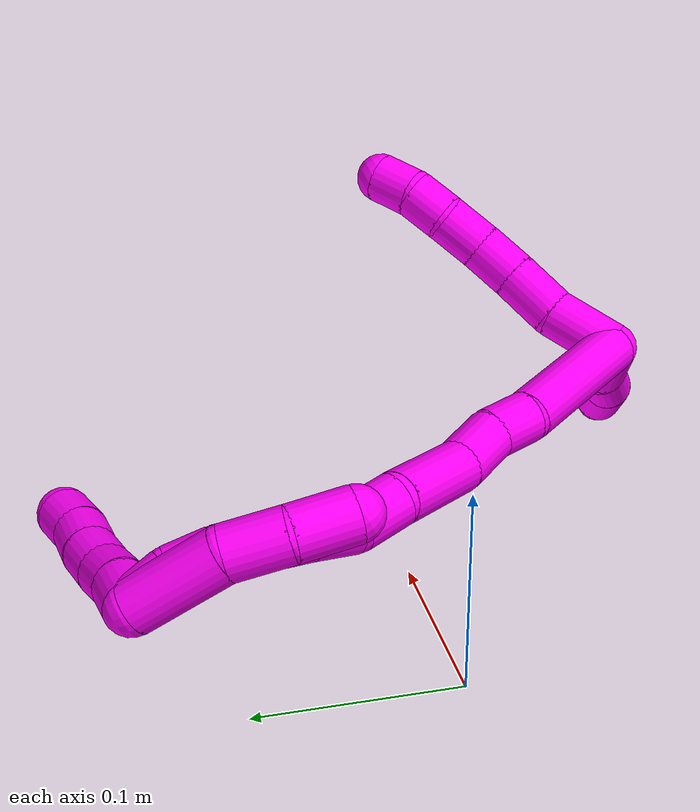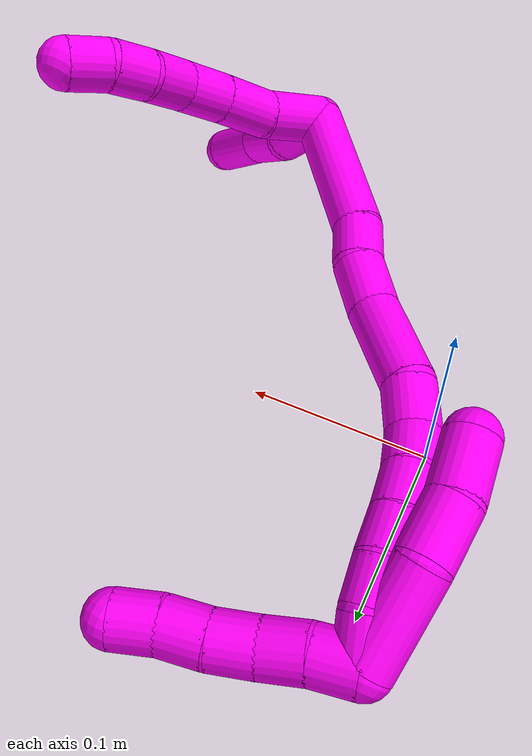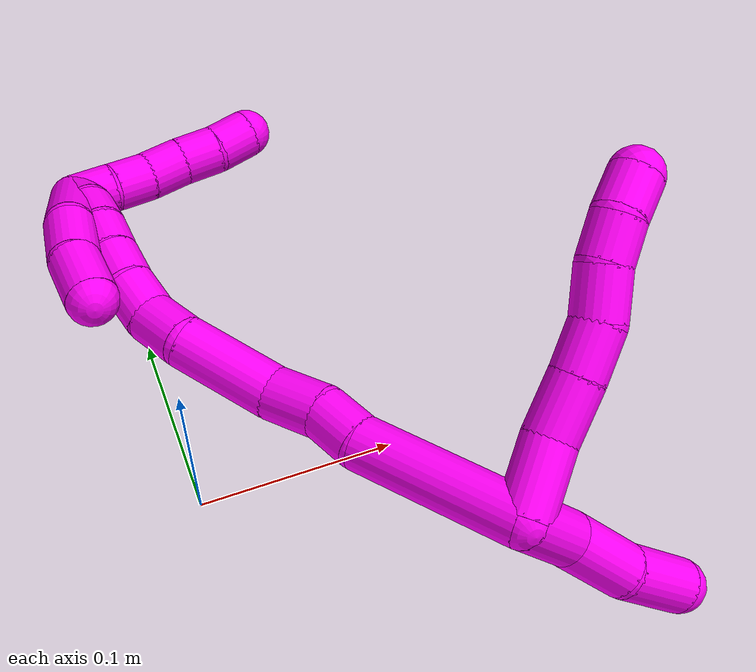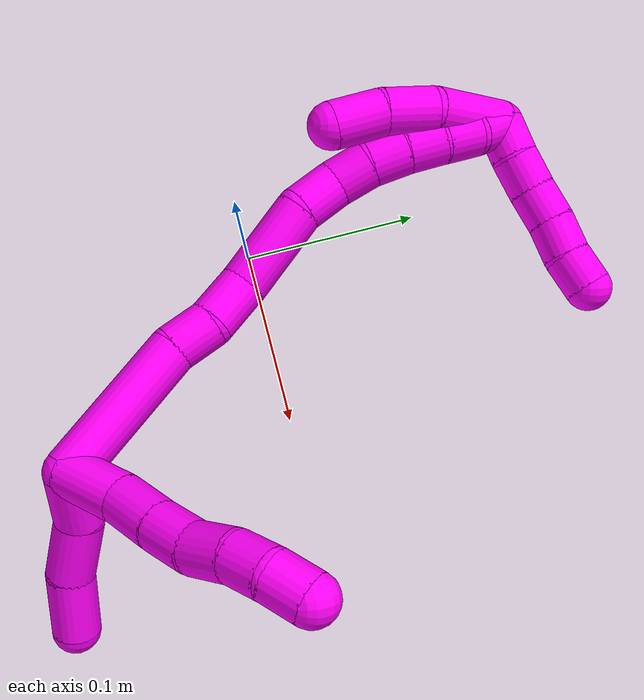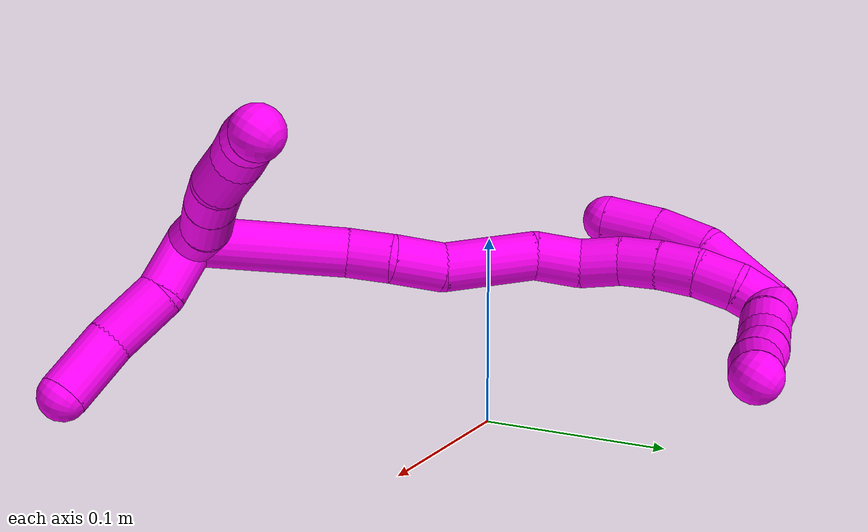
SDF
<sdf version="1.7">
 <world name="default">
  <model name="10">
   <static>0</static>
   <link name="10">
    <collision name="collision-cylinder-e_1_2_8">
     <pose>0.009218 0.011858 -0.008254 -2.1789 0.567924 -1.01907</pose>
     <geometry><cylinder><radius>0.0125</radius><length>0.034277</length></cylinder></geometry>
     <surface>
      <friction><ode><mu>1.16</mu><mu2>1.16</mu2><slip1>0</slip1><slip2>0</slip2></ode></friction>
      <contact><ode><kp>1e+06</kp><kd>1</kd><max_vel>0</max_vel><min_depth>0.001</min_depth></ode></contact>
     </surface>
    </collision>
    <visual name="visual-cylinder-e_1_2_8">
     <pose>0.009218 0.011858 -0.008254 -2.1789 0.567924 -1.01907</pose>
     <geometry><cylinder><radius>0.0125</radius><length>0.034277</length></cylinder></geometry>
     <material><ambient>1 0 0.964706 1</ambient></material>
    </visual>
    <collision name="collision-cylinder-e_2_8_9">
     <pose>0.02627 0.034476 -0.020463 -1.92294 0.599418 -0.833656</pose>
     <geometry><cylinder><radius>0.0125</radius><length>0.027769</length></cylinder></geometry>
     <surface>
      <friction><ode><mu>1.16</mu><mu2>1.16</mu2><slip1>0</slip1><slip2>0</slip2></ode></friction>
      <contact><ode><kp>1e+06</kp><kd>1</kd><max_vel>0</max_vel><min_depth>0.001</min_depth></ode></contact>
     </surface>
    </collision>
    <visual name="visual-cylinder-e_2_8_9">
     <pose>0.02627 0.034476 -0.020463 -1.92294 0.599418 -0.833656</pose>
     <geometry><cylinder><radius>0.0125</radius><length>0.027769</length></cylinder></geometry>
     <material><ambient>1 0 0.964706 1</ambient></material>
    </visual>
    <collision name="collision-cylinder-e_3_9_10">
     <pose>0.040341 0.054486 -0.028257 -1.96434 0.557046 -0.809414</pose>
     <geometry><cylinder><radius>0.0125</radius><length>0.023597</length></cylinder></geometry>
     <surface>
      <friction><ode><mu>1.16</mu><mu2>1.16</mu2><slip1>0</slip1><slip2>0</slip2></ode></friction>
      <contact><ode><kp>1e+06</kp><kd>1</kd><max_vel>0</max_vel><min_depth>0.001</min_depth></ode></contact>
     </surface>
    </collision>
    <visual name="visual-cylinder-e_3_9_10">
     <pose>0.040341 0.054486 -0.028257 -1.96434 0.557046 -0.809414</pose>
     <geometry><cylinder><radius>0.0125</radius><length>0.023597</length></cylinder></geometry>
     <material><ambient>1 0 0.964706 1</ambient></material>
    </visual>
    <collision name="collision-cylinder-e_4_10_11">
     <pose>0.049859 0.074118 -0.036778 -1.99435 0.28043 -0.430152</pose>
     <geometry><cylinder><radius>0.0125</radius><length>0.023703</length></cylinder></geometry>
     <surface>
      <friction><ode><mu>1.16</mu><mu2>1.16</mu2><slip1>0</slip1><slip2>0</slip2></ode></friction>
      <contact><ode><kp>1e+06</kp><kd>1</kd><max_vel>0</max_vel><min_depth>0.001</min_depth></ode></contact>
     </surface>
    </collision>
    <visual name="visual-cylinder-e_4_10_11">
     <pose>0.049859 0.074118 -0.036778 -1.99435 0.28043 -0.430152</pose>
     <geometry><cylinder><radius>0.0125</radius><length>0.023703</length></cylinder></geometry>
     <material><ambient>1 0 0.964706 1</ambient></material>
    </visual>
    <collision name="collision-cylinder-e_5_11_12">
     <pose>0.058116 0.092488 -0.045372 -2.02635 0.510136 -0.792032</pose>
     <geometry><cylinder><radius>0.0125</radius><length>0.020386</length></cylinder></geometry>
     <surface>
      <friction><ode><mu>1.16</mu><mu2>1.16</mu2><slip1>0</slip1><slip2>0</slip2></ode></friction>
      <contact><ode><kp>1e+06</kp><kd>1</kd><max_vel>0</max_vel><min_depth>0.001</min_depth></ode></contact>
     </surface>
    </collision>
    <visual name="visual-cylinder-e_5_11_12">
     <pose>0.058116 0.092488 -0.045372 -2.02635 0.510136 -0.792032</pose>
     <geometry><cylinder><radius>0.0125</radius><length>0.020386</length></cylinder></geometry>
     <material><ambient>1 0 0.964706 1</ambient></material>
    </visual>
    <collision name="collision-cylinder-e_6_12_6">
     <pose>0.069451 0.106387 -0.054514 -2.2949 0.67821 -1.32835</pose>
     <geometry><cylinder><radius>0.0125</radius><length>0.020268</length></cylinder></geometry>
     <surface>
      <friction><ode><mu>1.16</mu><mu2>1.16</mu2><slip1>0</slip1><slip2>0</slip2></ode></friction>
      <contact><ode><kp>1e+06</kp><kd>1</kd><max_vel>0</max_vel><min_depth>0.001</min_depth></ode></contact>
     </surface>
    </collision>
    <visual name="visual-cylinder-e_6_12_6">
     <pose>0.069451 0.106387 -0.054514 -2.2949 0.67821 -1.32835</pose>
     <geometry><cylinder><radius>0.0125</radius><length>0.020268</length></cylinder></geometry>
     <material><ambient>1 0 0.964706 1</ambient></material>
    </visual>
    <collision name="collision-cylinder-e_1_2_13">
     <pose>0.011166 -0.010272 -0.003297 1.88138 0.802631 1.05396</pose>
     <geometry><cylinder><radius>0.0125</radius><length>0.031053</length></cylinder></geometry>
     <surface>
      <friction><ode><mu>1.16</mu><mu2>1.16</mu2><slip1>0</slip1><slip2>0</slip2></ode></friction>
      <contact><ode><kp>1e+06</kp><kd>1</kd><max_vel>0</max_vel><min_depth>0.001</min_depth></ode></contact>
     </surface>
    </collision>
    <visual name="visual-cylinder-e_1_2_13">
     <pose>0.011166 -0.010272 -0.003297 1.88138 0.802631 1.05396</pose>
     <geometry><cylinder><radius>0.0125</radius><length>0.031053</length></cylinder></geometry>
     <material><ambient>1 0 0.964706 1</ambient></material>
    </visual>
    <collision name="collision-cylinder-e_2_13_14">
     <pose>0.0349 -0.031774 -0.004913 1.4222 0.835989 0.730879</pose>
     <geometry><cylinder><radius>0.0125</radius><length>0.033875</length></cylinder></geometry>
     <surface>
      <friction><ode><mu>1.16</mu><mu2>1.16</mu2><slip1>0</slip1><slip2>0</slip2></ode></friction>
      <contact><ode><kp>1e+06</kp><kd>1</kd><max_vel>0</max_vel><min_depth>0.001</min_depth></ode></contact>
     </surface>
    </collision>
    <visual name="visual-cylinder-e_2_13_14">
     <pose>0.0349 -0.031774 -0.004913 1.4222 0.835989 0.730879</pose>
     <geometry><cylinder><radius>0.0125</radius><length>0.033875</length></cylinder></geometry>
     <material><ambient>1 0 0.964706 1</ambient></material>
    </visual>
    <collision name="collision-cylinder-e_3_14_5">
     <pose>0.061855 -0.052895 -0.004864 1.7344 0.962287 1.10321</pose>
     <geometry><cylinder><radius>0.0125</radius><length>0.035072</length></cylinder></geometry>
     <surface>
      <friction><ode><mu>1.16</mu><mu2>1.16</mu2><slip1>0</slip1><slip2>0</slip2></ode></friction>
      <contact><ode><kp>1e+06</kp><kd>1</kd><max_vel>0</max_vel><min_depth>0.001</min_depth></ode></contact>
     </surface>
    </collision>
    <visual name="visual-cylinder-e_3_14_5">
     <pose>0.061855 -0.052895 -0.004864 1.7344 0.962287 1.10321</pose>
     <geometry><cylinder><radius>0.0125</radius><length>0.035072</length></cylinder></geometry>
     <material><ambient>1 0 0.964706 1</ambient></material>
    </visual>
    <collision name="collision-cylinder-e_1_2_15">
     <pose>-0.025099 0.00723 -0.028811 -2.89571 -0.701558 2.49026</pose>
     <geometry><cylinder><radius>0.0125</radius><length>0.077778</length></cylinder></geometry>
     <surface>
      <friction><ode><mu>1.16</mu><mu2>1.16</mu2><slip1>0</slip1><slip2>0</slip2></ode></friction>
      <contact><ode><kp>1e+06</kp><kd>1</kd><max_vel>0</max_vel><min_depth>0.001</min_depth></ode></contact>
     </surface>
    </collision>
    <visual name="visual-cylinder-e_1_2_15">
     <pose>-0.025099 0.00723 -0.028811 -2.89571 -0.701558 2.49026</pose>
     <geometry><cylinder><radius>0.0125</radius><length>0.077778</length></cylinder></geometry>
     <material><ambient>1 0 0.964706 1</ambient></material>
    </visual>
    <collision name="collision-cylinder-e_2_15_16">
     <pose>-0.055048 0.017361 -0.06747 -2.85516 -0.441384 1.99905</pose>
     <geometry><cylinder><radius>0.0125</radius><length>0.022706</length></cylinder></geometry>
     <surface>
      <friction><ode><mu>1.16</mu><mu2>1.16</mu2><slip1>0</slip1><slip2>0</slip2></ode></friction>
      <contact><ode><kp>1e+06</kp><kd>1</kd><max_vel>0</max_vel><min_depth>0.001</min_depth></ode></contact>
     </surface>
    </collision>
    <visual name="visual-cylinder-e_2_15_16">
     <pose>-0.055048 0.017361 -0.06747 -2.85516 -0.441384 1.99905</pose>
     <geometry><cylinder><radius>0.0125</radius><length>0.022706</length></cylinder></geometry>
     <material><ambient>1 0 0.964706 1</ambient></material>
    </visual>
    <collision name="collision-cylinder-e_3_16_17">
     <pose>-0.068499 0.02145 -0.087525 -3.02567 -0.696826 2.82477</pose>
     <geometry><cylinder><radius>0.0125</radius><length>0.026803</length></cylinder></geometry>
     <surface>
      <friction><ode><mu>1.16</mu><mu2>1.16</mu2><slip1>0</slip1><slip2>0</slip2></ode></friction>
      <contact><ode><kp>1e+06</kp><kd>1</kd><max_vel>0</max_vel><min_depth>0.001</min_depth></ode></contact>
     </surface>
    </collision>
    <visual name="visual-cylinder-e_3_16_17">
     <pose>-0.068499 0.02145 -0.087525 -3.02567 -0.696826 2.82477</pose>
     <geometry><cylinder><radius>0.0125</radius><length>0.026803</length></cylinder></geometry>
     <material><ambient>1 0 0.964706 1</ambient></material>
    </visual>
    <collision name="collision-cylinder-e_4_17_18">
     <pose>-0.093171 0.031322 -0.11319 -2.62972 -0.7364 1.94959</pose>
     <geometry><cylinder><radius>0.0125</radius><length>0.047858</length></cylinder></geometry>
     <surface>
      <friction><ode><mu>1.16</mu><mu2>1.16</mu2><slip1>0</slip1><slip2>0</slip2></ode></friction>
      <contact><ode><kp>1e+06</kp><kd>1</kd><max_vel>0</max_vel><min_depth>0.001</min_depth></ode></contact>
     </surface>
    </collision>
    <visual name="visual-cylinder-e_4_17_18">
     <pose>-0.093171 0.031322 -0.11319 -2.62972 -0.7364 1.94959</pose>
     <geometry><cylinder><radius>0.0125</radius><length>0.047858</length></cylinder></geometry>
     <material><ambient>1 0 0.964706 1</ambient></material>
    </visual>
    <collision name="collision-cylinder-e_5_18_19">
     <pose>-0.114838 0.042335 -0.138906 -2.91845 -0.488794 2.29711</pose>
     <geometry><cylinder><radius>0.0125</radius><length>0.023833</length></cylinder></geometry>
     <surface>
      <friction><ode><mu>1.16</mu><mu2>1.16</mu2><slip1>0</slip1><slip2>0</slip2></ode></friction>
      <contact><ode><kp>1e+06</kp><kd>1</kd><max_vel>0</max_vel><min_depth>0.001</min_depth></ode></contact>
     </surface>
    </collision>
    <visual name="visual-cylinder-e_5_18_19">
     <pose>-0.114838 0.042335 -0.138906 -2.91845 -0.488794 2.29711</pose>
     <geometry><cylinder><radius>0.0125</radius><length>0.023833</length></cylinder></geometry>
     <material><ambient>1 0 0.964706 1</ambient></material>
    </visual>
    <collision name="collision-cylinder-e_6_19_20">
     <pose>-0.123743 0.049789 -0.157573 -2.59395 -0.324234 1.0546</pose>
     <geometry><cylinder><radius>0.0125</radius><length>0.020774</length></cylinder></geometry>
     <surface>
      <friction><ode><mu>1.16</mu><mu2>1.16</mu2><slip1>0</slip1><slip2>0</slip2></ode></friction>
      <contact><ode><kp>1e+06</kp><kd>1</kd><max_vel>0</max_vel><min_depth>0.001</min_depth></ode></contact>
     </surface>
    </collision>
    <visual name="visual-cylinder-e_6_19_20">
     <pose>-0.123743 0.049789 -0.157573 -2.59395 -0.324234 1.0546</pose>
     <geometry><cylinder><radius>0.0125</radius><length>0.020774</length></cylinder></geometry>
     <material><ambient>1 0 0.964706 1</ambient></material>
    </visual>
    <collision name="collision-cylinder-e_7_20_21">
     <pose>-0.128808 0.058865 -0.175054 -2.73118 -0.175576 0.800122</pose>
     <geometry><cylinder><radius>0.0125</radius><length>0.020103</length></cylinder></geometry>
     <surface>
      <friction><ode><mu>1.16</mu><mu2>1.16</mu2><slip1>0</slip1><slip2>0</slip2></ode></friction>
      <contact><ode><kp>1e+06</kp><kd>1</kd><max_vel>0</max_vel><min_depth>0.001</min_depth></ode></contact>
     </surface>
    </collision>
    <visual name="visual-cylinder-e_7_20_21">
     <pose>-0.128808 0.058865 -0.175054 -2.73118 -0.175576 0.800122</pose>
     <geometry><cylinder><radius>0.0125</radius><length>0.020103</length></cylinder></geometry>
     <material><ambient>1 0 0.964706 1</ambient></material>
    </visual>
    <collision name="collision-cylinder-e_8_21_22">
     <pose>-0.131679 0.065992 -0.193548 -2.8161 -0.111752 0.656652</pose>
     <geometry><cylinder><radius>0.0125</radius><length>0.020006</length></cylinder></geometry>
     <surface>
      <friction><ode><mu>1.16</mu><mu2>1.16</mu2><slip1>0</slip1><slip2>0</slip2></ode></friction>
      <contact><ode><kp>1e+06</kp><kd>1</kd><max_vel>0</max_vel><min_depth>0.001</min_depth></ode></contact>
     </surface>
    </collision>
    <visual name="visual-cylinder-e_8_21_22">
     <pose>-0.131679 0.065992 -0.193548 -2.8161 -0.111752 0.656652</pose>
     <geometry><cylinder><radius>0.0125</radius><length>0.020006</length></cylinder></geometry>
     <material><ambient>1 0 0.964706 1</ambient></material>
    </visual>
    <collision name="collision-cylinder-e_9_22_23">
     <pose>-0.134128 0.070791 -0.212809 -2.97843 -0.132875 1.36613</pose>
     <geometry><cylinder><radius>0.0125</radius><length>0.020129</length></cylinder></geometry>
     <surface>
      <friction><ode><mu>1.16</mu><mu2>1.16</mu2><slip1>0</slip1><slip2>0</slip2></ode></friction>
      <contact><ode><kp>1e+06</kp><kd>1</kd><max_vel>0</max_vel><min_depth>0.001</min_depth></ode></contact>
     </surface>
    </collision>
    <visual name="visual-cylinder-e_9_22_23">
     <pose>-0.134128 0.070791 -0.212809 -2.97843 -0.132875 1.36613</pose>
     <geometry><cylinder><radius>0.0125</radius><length>0.020129</length></cylinder></geometry>
     <material><ambient>1 0 0.964706 1</ambient></material>
    </visual>
    <collision name="collision-cylinder-e_10_23_1">
     <pose>-0.1381 0.071564 -0.232266 3.05357 -0.266832 -2.50744</pose>
     <geometry><cylinder><radius>0.0125</radius><length>0.02001</length></cylinder></geometry>
     <surface>
      <friction><ode><mu>1.16</mu><mu2>1.16</mu2><slip1>0</slip1><slip2>0</slip2></ode></friction>
      <contact><ode><kp>1e+06</kp><kd>1</kd><max_vel>0</max_vel><min_depth>0.001</min_depth></ode></contact>
     </surface>
    </collision>
    <visual name="visual-cylinder-e_10_23_1">
     <pose>-0.1381 0.071564 -0.232266 3.05357 -0.266832 -2.50744</pose>
     <geometry><cylinder><radius>0.0125</radius><length>0.02001</length></cylinder></geometry>
     <material><ambient>1 0 0.964706 1</ambient></material>
    </visual>
    <collision name="collision-cylinder-e_1_1_24">
     <pose>-0.143988 0.072984 -0.220004 -0.103331 -0.146749 0.007602</pose>
     <geometry><cylinder><radius>0.0125</radius><length>0.044464</length></cylinder></geometry>
     <surface>
      <friction><ode><mu>1.16</mu><mu2>1.16</mu2><slip1>0</slip1><slip2>0</slip2></ode></friction>
      <contact><ode><kp>1e+06</kp><kd>1</kd><max_vel>0</max_vel><min_depth>0.001</min_depth></ode></contact>
     </surface>
    </collision>
    <visual name="visual-cylinder-e_1_1_24">
     <pose>-0.143988 0.072984 -0.220004 -0.103331 -0.146749 0.007602</pose>
     <geometry><cylinder><radius>0.0125</radius><length>0.044464</length></cylinder></geometry>
     <material><ambient>1 0 0.964706 1</ambient></material>
    </visual>
    <collision name="collision-cylinder-e_2_24_25">
     <pose>-0.148107 0.072429 -0.184615 0.20596 -0.062802 -0.006492</pose>
     <geometry><cylinder><radius>0.0125</radius><length>0.027664</length></cylinder></geometry>
     <surface>
      <friction><ode><mu>1.16</mu><mu2>1.16</mu2><slip1>0</slip1><slip2>0</slip2></ode></friction>
      <contact><ode><kp>1e+06</kp><kd>1</kd><max_vel>0</max_vel><min_depth>0.001</min_depth></ode></contact>
     </surface>
    </collision>
    <visual name="visual-cylinder-e_2_24_25">
     <pose>-0.148107 0.072429 -0.184615 0.20596 -0.062802 -0.006492</pose>
     <geometry><cylinder><radius>0.0125</radius><length>0.027664</length></cylinder></geometry>
     <material><ambient>1 0 0.964706 1</ambient></material>
    </visual>
    <collision name="collision-cylinder-e_3_25_4">
     <pose>-0.147221 0.065703 -0.157839 0.286203 0.126242 0.018213</pose>
     <geometry><cylinder><radius>0.0125</radius><length>0.027872</length></cylinder></geometry>
     <surface>
      <friction><ode><mu>1.16</mu><mu2>1.16</mu2><slip1>0</slip1><slip2>0</slip2></ode></friction>
      <contact><ode><kp>1e+06</kp><kd>1</kd><max_vel>0</max_vel><min_depth>0.001</min_depth></ode></contact>
     </surface>
    </collision>
    <visual name="visual-cylinder-e_3_25_4">
     <pose>-0.147221 0.065703 -0.157839 0.286203 0.126242 0.018213</pose>
     <geometry><cylinder><radius>0.0125</radius><length>0.027872</length></cylinder></geometry>
     <material><ambient>1 0 0.964706 1</ambient></material>
    </visual>
    <collision name="collision-cylinder-e_1_1_26">
     <pose>-0.130928 0.071369 -0.243711 -2.79847 1.37506 -2.72571</pose>
     <geometry><cylinder><radius>0.0125</radius><length>0.02</length></cylinder></geometry>
     <surface>
      <friction><ode><mu>1.16</mu><mu2>1.16</mu2><slip1>0</slip1><slip2>0</slip2></ode></friction>
      <contact><ode><kp>1e+06</kp><kd>1</kd><max_vel>0</max_vel><min_depth>0.001</min_depth></ode></contact>
     </surface>
    </collision>
    <visual name="visual-cylinder-e_1_1_26">
     <pose>-0.130928 0.071369 -0.243711 -2.79847 1.37506 -2.72571</pose>
     <geometry><cylinder><radius>0.0125</radius><length>0.02</length></cylinder></geometry>
     <material><ambient>1 0 0.964706 1</ambient></material>
    </visual>
    <collision name="collision-cylinder-e_2_26_27">
     <pose>-0.111648 0.072105 -0.248749 -3.11611 1.24426 -3.10607</pose>
     <geometry><cylinder><radius>0.0125</radius><length>0.02</length></cylinder></geometry>
     <surface>
      <friction><ode><mu>1.16</mu><mu2>1.16</mu2><slip1>0</slip1><slip2>0</slip2></ode></friction>
      <contact><ode><kp>1e+06</kp><kd>1</kd><max_vel>0</max_vel><min_depth>0.001</min_depth></ode></contact>
     </surface>
    </collision>
    <visual name="visual-cylinder-e_2_26_27">
     <pose>-0.111648 0.072105 -0.248749 -3.11611 1.24426 -3.10607</pose>
     <geometry><cylinder><radius>0.0125</radius><length>0.02</length></cylinder></geometry>
     <material><ambient>1 0 0.964706 1</ambient></material>
    </visual>
    <collision name="collision-cylinder-e_3_27_28">
     <pose>-0.092666 0.073605 -0.254701 -2.66493 1.25667 -2.49622</pose>
     <geometry><cylinder><radius>0.0125</radius><length>0.02</length></cylinder></geometry>
     <surface>
      <friction><ode><mu>1.16</mu><mu2>1.16</mu2><slip1>0</slip1><slip2>0</slip2></ode></friction>
      <contact><ode><kp>1e+06</kp><kd>1</kd><max_vel>0</max_vel><min_depth>0.001</min_depth></ode></contact>
     </surface>
    </collision>
    <visual name="visual-cylinder-e_3_27_28">
     <pose>-0.092666 0.073605 -0.254701 -2.66493 1.25667 -2.49622</pose>
     <geometry><cylinder><radius>0.0125</radius><length>0.02</length></cylinder></geometry>
     <material><ambient>1 0 0.964706 1</ambient></material>
    </visual>
    <collision name="collision-cylinder-e_4_28_29">
     <pose>-0.073346 0.076165 -0.259019 -2.51343 1.37521 -2.38835</pose>
     <geometry><cylinder><radius>0.0125</radius><length>0.02</length></cylinder></geometry>
     <surface>
      <friction><ode><mu>1.16</mu><mu2>1.16</mu2><slip1>0</slip1><slip2>0</slip2></ode></friction>
      <contact><ode><kp>1e+06</kp><kd>1</kd><max_vel>0</max_vel><min_depth>0.001</min_depth></ode></contact>
     </surface>
    </collision>
    <visual name="visual-cylinder-e_4_28_29">
     <pose>-0.073346 0.076165 -0.259019 -2.51343 1.37521 -2.38835</pose>
     <geometry><cylinder><radius>0.0125</radius><length>0.02</length></cylinder></geometry>
     <material><ambient>1 0 0.964706 1</ambient></material>
    </visual>
    <collision name="collision-cylinder-e_5_29_3">
     <pose>-0.054202 0.079145 -0.263672 -2.60357 1.20391 -2.37834</pose>
     <geometry><cylinder><radius>0.0125</radius><length>0.02</length></cylinder></geometry>
     <surface>
      <friction><ode><mu>1.16</mu><mu2>1.16</mu2><slip1>0</slip1><slip2>0</slip2></ode></friction>
      <contact><ode><kp>1e+06</kp><kd>1</kd><max_vel>0</max_vel><min_depth>0.001</min_depth></ode></contact>
     </surface>
    </collision>
    <visual name="visual-cylinder-e_5_29_3">
     <pose>-0.054202 0.079145 -0.263672 -2.60357 1.20391 -2.37834</pose>
     <geometry><cylinder><radius>0.0125</radius><length>0.02</length></cylinder></geometry>
     <material><ambient>1 0 0.964706 1</ambient></material>
    </visual>
    <collision name="collision-sphere-3">
     <pose>-0.044867 0.080983 -0.266752 0 -0 0</pose>
     <geometry><sphere><radius>0.0125</radius></sphere></geometry>
     <surface>
      <friction><ode><mu>1.16</mu><mu2>1.16</mu2><slip1>0</slip1><slip2>0</slip2></ode></friction>
      <contact><ode><kp>1e+06</kp><kd>1</kd><max_vel>0</max_vel><min_depth>0.001</min_depth></ode></contact>
     </surface>
    </collision>
    <visual name="visual-sphere-3">
     <pose>-0.044867 0.080983 -0.266752 0 -0 0</pose>
     <geometry><sphere><radius>0.0125</radius></sphere></geometry>
     <material><ambient>1 0 0.964706 1</ambient></material>
    </visual>
    <collision name="collision-sphere-29">
     <pose>-0.063536 0.077307 -0.260591 0 -0 0</pose>
     <geometry><sphere><radius>0.0125</radius></sphere></geometry>
     <surface>
      <friction><ode><mu>1.16</mu><mu2>1.16</mu2><slip1>0</slip1><slip2>0</slip2></ode></friction>
      <contact><ode><kp>1e+06</kp><kd>1</kd><max_vel>0</max_vel><min_depth>0.001</min_depth></ode></contact>
     </surface>
    </collision>
    <visual name="visual-sphere-29">
     <pose>-0.063536 0.077307 -0.260591 0 -0 0</pose>
     <geometry><sphere><radius>0.0125</radius></sphere></geometry>
     <material><ambient>1 0 0.964706 1</ambient></material>
    </visual>
    <collision name="collision-sphere-28">
     <pose>-0.083155 0.075022 -0.257446 0 -0 0</pose>
     <geometry><sphere><radius>0.0125</radius></sphere></geometry>
     <surface>
      <friction><ode><mu>1.16</mu><mu2>1.16</mu2><slip1>0</slip1><slip2>0</slip2></ode></friction>
      <contact><ode><kp>1e+06</kp><kd>1</kd><max_vel>0</max_vel><min_depth>0.001</min_depth></ode></contact>
     </surface>
    </collision>
    <visual name="visual-sphere-28">
     <pose>-0.083155 0.075022 -0.257446 0 -0 0</pose>
     <geometry><sphere><radius>0.0125</radius></sphere></geometry>
     <material><ambient>1 0 0.964706 1</ambient></material>
    </visual>
    <collision name="collision-sphere-27">
     <pose>-0.102176 0.072187 -0.251956 0 -0 0</pose>
     <geometry><sphere><radius>0.0125</radius></sphere></geometry>
     <surface>
      <friction><ode><mu>1.16</mu><mu2>1.16</mu2><slip1>0</slip1><slip2>0</slip2></ode></friction>
      <contact><ode><kp>1e+06</kp><kd>1</kd><max_vel>0</max_vel><min_depth>0.001</min_depth></ode></contact>
     </surface>
    </collision>
    <visual name="visual-sphere-27">
     <pose>-0.102176 0.072187 -0.251956 0 -0 0</pose>
     <geometry><sphere><radius>0.0125</radius></sphere></geometry>
     <material><ambient>1 0 0.964706 1</ambient></material>
    </visual>
    <collision name="collision-sphere-26">
     <pose>-0.121119 0.072024 -0.245543 0 -0 0</pose>
     <geometry><sphere><radius>0.0125</radius></sphere></geometry>
     <surface>
      <friction><ode><mu>1.16</mu><mu2>1.16</mu2><slip1>0</slip1><slip2>0</slip2></ode></friction>
      <contact><ode><kp>1e+06</kp><kd>1</kd><max_vel>0</max_vel><min_depth>0.001</min_depth></ode></contact>
     </surface>
    </collision>
    <visual name="visual-sphere-26">
     <pose>-0.121119 0.072024 -0.245543 0 -0 0</pose>
     <geometry><sphere><radius>0.0125</radius></sphere></geometry>
     <material><ambient>1 0 0.964706 1</ambient></material>
    </visual>
    <collision name="collision-sphere-4">
     <pose>-0.145466 0.0618 -0.144577 0 -0 0</pose>
     <geometry><sphere><radius>0.0125</radius></sphere></geometry>
     <surface>
      <friction><ode><mu>1.16</mu><mu2>1.16</mu2><slip1>0</slip1><slip2>0</slip2></ode></friction>
      <contact><ode><kp>1e+06</kp><kd>1</kd><max_vel>0</max_vel><min_depth>0.001</min_depth></ode></contact>
     </surface>
    </collision>
    <visual name="visual-sphere-4">
     <pose>-0.145466 0.0618 -0.144577 0 -0 0</pose>
     <geometry><sphere><radius>0.0125</radius></sphere></geometry>
     <material><ambient>1 0 0.964706 1</ambient></material>
    </visual>
    <collision name="collision-sphere-25">
     <pose>-0.148975 0.069606 -0.171102 0 -0 0</pose>
     <geometry><sphere><radius>0.0125</radius></sphere></geometry>
     <surface>
      <friction><ode><mu>1.16</mu><mu2>1.16</mu2><slip1>0</slip1><slip2>0</slip2></ode></friction>
      <contact><ode><kp>1e+06</kp><kd>1</kd><max_vel>0</max_vel><min_depth>0.001</min_depth></ode></contact>
     </surface>
    </collision>
    <visual name="visual-sphere-25">
     <pose>-0.148975 0.069606 -0.171102 0 -0 0</pose>
     <geometry><sphere><radius>0.0125</radius></sphere></geometry>
     <material><ambient>1 0 0.964706 1</ambient></material>
    </visual>
    <collision name="collision-sphere-24">
     <pose>-0.147239 0.075252 -0.198128 0 -0 0</pose>
     <geometry><sphere><radius>0.0125</radius></sphere></geometry>
     <surface>
      <friction><ode><mu>1.16</mu><mu2>1.16</mu2><slip1>0</slip1><slip2>0</slip2></ode></friction>
      <contact><ode><kp>1e+06</kp><kd>1</kd><max_vel>0</max_vel><min_depth>0.001</min_depth></ode></contact>
     </surface>
    </collision>
    <visual name="visual-sphere-24">
     <pose>-0.147239 0.075252 -0.198128 0 -0 0</pose>
     <geometry><sphere><radius>0.0125</radius></sphere></geometry>
     <material><ambient>1 0 0.964706 1</ambient></material>
    </visual>
    <collision name="collision-sphere-1">
     <pose>-0.140738 0.070715 -0.24188 0 -0 0</pose>
     <geometry><sphere><radius>0.0125</radius></sphere></geometry>
     <surface>
      <friction><ode><mu>1.16</mu><mu2>1.16</mu2><slip1>0</slip1><slip2>0</slip2></ode></friction>
      <contact><ode><kp>1e+06</kp><kd>1</kd><max_vel>0</max_vel><min_depth>0.001</min_depth></ode></contact>
     </surface>
    </collision>
    <visual name="visual-sphere-1">
     <pose>-0.140738 0.070715 -0.24188 0 -0 0</pose>
     <geometry><sphere><radius>0.0125</radius></sphere></geometry>
     <material><ambient>1 0 0.964706 1</ambient></material>
    </visual>
    <collision name="collision-sphere-23">
     <pose>-0.135461 0.072412 -0.222653 0 -0 0</pose>
     <geometry><sphere><radius>0.0125</radius></sphere></geometry>
     <surface>
      <friction><ode><mu>1.16</mu><mu2>1.16</mu2><slip1>0</slip1><slip2>0</slip2></ode></friction>
      <contact><ode><kp>1e+06</kp><kd>1</kd><max_vel>0</max_vel><min_depth>0.001</min_depth></ode></contact>
     </surface>
    </collision>
    <visual name="visual-sphere-23">
     <pose>-0.135461 0.072412 -0.222653 0 -0 0</pose>
     <geometry><sphere><radius>0.0125</radius></sphere></geometry>
     <material><ambient>1 0 0.964706 1</ambient></material>
    </visual>
    <collision name="collision-sphere-22">
     <pose>-0.132795 0.069171 -0.202966 0 -0 0</pose>
     <geometry><sphere><radius>0.0125</radius></sphere></geometry>
     <surface>
      <friction><ode><mu>1.16</mu><mu2>1.16</mu2><slip1>0</slip1><slip2>0</slip2></ode></friction>
      <contact><ode><kp>1e+06</kp><kd>1</kd><max_vel>0</max_vel><min_depth>0.001</min_depth></ode></contact>
     </surface>
    </collision>
    <visual name="visual-sphere-22">
     <pose>-0.132795 0.069171 -0.202966 0 -0 0</pose>
     <geometry><sphere><radius>0.0125</radius></sphere></geometry>
     <material><ambient>1 0 0.964706 1</ambient></material>
    </visual>
    <collision name="collision-sphere-21">
     <pose>-0.130564 0.062814 -0.184129 0 -0 0</pose>
     <geometry><sphere><radius>0.0125</radius></sphere></geometry>
     <surface>
      <friction><ode><mu>1.16</mu><mu2>1.16</mu2><slip1>0</slip1><slip2>0</slip2></ode></friction>
      <contact><ode><kp>1e+06</kp><kd>1</kd><max_vel>0</max_vel><min_depth>0.001</min_depth></ode></contact>
     </surface>
    </collision>
    <visual name="visual-sphere-21">
     <pose>-0.130564 0.062814 -0.184129 0 -0 0</pose>
     <geometry><sphere><radius>0.0125</radius></sphere></geometry>
     <material><ambient>1 0 0.964706 1</ambient></material>
    </visual>
    <collision name="collision-sphere-12">
     <pose>0.063093 0.100476 -0.049286 0 -0 0</pose>
     <geometry><sphere><radius>0.0125</radius></sphere></geometry>
     <surface>
      <friction><ode><mu>1.16</mu><mu2>1.16</mu2><slip1>0</slip1><slip2>0</slip2></ode></friction>
      <contact><ode><kp>1e+06</kp><kd>1</kd><max_vel>0</max_vel><min_depth>0.001</min_depth></ode></contact>
     </surface>
    </collision>
    <visual name="visual-sphere-12">
     <pose>0.063093 0.100476 -0.049286 0 -0 0</pose>
     <geometry><sphere><radius>0.0125</radius></sphere></geometry>
     <material><ambient>1 0 0.964706 1</ambient></material>
    </visual>
    <collision name="collision-sphere-11">
     <pose>0.053139 0.0845 -0.041459 0 -0 0</pose>
     <geometry><sphere><radius>0.0125</radius></sphere></geometry>
     <surface>
      <friction><ode><mu>1.16</mu><mu2>1.16</mu2><slip1>0</slip1><slip2>0</slip2></ode></friction>
      <contact><ode><kp>1e+06</kp><kd>1</kd><max_vel>0</max_vel><min_depth>0.001</min_depth></ode></contact>
     </surface>
    </collision>
    <visual name="visual-sphere-11">
     <pose>0.053139 0.0845 -0.041459 0 -0 0</pose>
     <geometry><sphere><radius>0.0125</radius></sphere></geometry>
     <material><ambient>1 0 0.964706 1</ambient></material>
    </visual>
    <collision name="collision-sphere-10">
     <pose>0.046579 0.063736 -0.032097 0 -0 0</pose>
     <geometry><sphere><radius>0.0125</radius></sphere></geometry>
     <surface>
      <friction><ode><mu>1.16</mu><mu2>1.16</mu2><slip1>0</slip1><slip2>0</slip2></ode></friction>
      <contact><ode><kp>1e+06</kp><kd>1</kd><max_vel>0</max_vel><min_depth>0.001</min_depth></ode></contact>
     </surface>
    </collision>
    <visual name="visual-sphere-10">
     <pose>0.046579 0.063736 -0.032097 0 -0 0</pose>
     <geometry><sphere><radius>0.0125</radius></sphere></geometry>
     <material><ambient>1 0 0.964706 1</ambient></material>
    </visual>
    <collision name="collision-sphere-9">
     <pose>0.034103 0.045237 -0.024417 0 -0 0</pose>
     <geometry><sphere><radius>0.0125</radius></sphere></geometry>
     <surface>
      <friction><ode><mu>1.16</mu><mu2>1.16</mu2><slip1>0</slip1><slip2>0</slip2></ode></friction>
      <contact><ode><kp>1e+06</kp><kd>1</kd><max_vel>0</max_vel><min_depth>0.001</min_depth></ode></contact>
     </surface>
    </collision>
    <visual name="visual-sphere-9">
     <pose>0.034103 0.045237 -0.024417 0 -0 0</pose>
     <geometry><sphere><radius>0.0125</radius></sphere></geometry>
     <material><ambient>1 0 0.964706 1</ambient></material>
    </visual>
    <collision name="collision-sphere-2">
     <geometry><sphere><radius>0.0125</radius></sphere></geometry>
     <surface>
      <friction><ode><mu>1.16</mu><mu2>1.16</mu2><slip1>0</slip1><slip2>0</slip2></ode></friction>
      <contact><ode><kp>1e+06</kp><kd>1</kd><max_vel>0</max_vel><min_depth>0.001</min_depth></ode></contact>
     </surface>
    </collision>
    <visual name="visual-sphere-2">
     <geometry><sphere><radius>0.0125</radius></sphere></geometry>
     <material><ambient>1 0 0.964706 1</ambient></material>
    </visual>
    <collision name="collision-sphere-19">
     <pose>-0.120434 0.044663 -0.149166 0 -0 0</pose>
     <geometry><sphere><radius>0.0125</radius></sphere></geometry>
     <surface>
      <friction><ode><mu>1.16</mu><mu2>1.16</mu2><slip1>0</slip1><slip2>0</slip2></ode></friction>
      <contact><ode><kp>1e+06</kp><kd>1</kd><max_vel>0</max_vel><min_depth>0.001</min_depth></ode></contact>
     </surface>
    </collision>
    <visual name="visual-sphere-19">
     <pose>-0.120434 0.044663 -0.149166 0 -0 0</pose>
     <geometry><sphere><radius>0.0125</radius></sphere></geometry>
     <material><ambient>1 0 0.964706 1</ambient></material>
    </visual>
    <collision name="collision-sphere-8">
     <pose>0.018437 0.023716 -0.016509 0 -0 0</pose>
     <geometry><sphere><radius>0.0125</radius></sphere></geometry>
     <surface>
      <friction><ode><mu>1.16</mu><mu2>1.16</mu2><slip1>0</slip1><slip2>0</slip2></ode></friction>
      <contact><ode><kp>1e+06</kp><kd>1</kd><max_vel>0</max_vel><min_depth>0.001</min_depth></ode></contact>
     </surface>
    </collision>
    <visual name="visual-sphere-8">
     <pose>0.018437 0.023716 -0.016509 0 -0 0</pose>
     <geometry><sphere><radius>0.0125</radius></sphere></geometry>
     <material><ambient>1 0 0.964706 1</ambient></material>
    </visual>
    <collision name="collision-sphere-6">
     <pose>0.075809 0.112299 -0.059741 0 -0 0</pose>
     <geometry><sphere><radius>0.0125</radius></sphere></geometry>
     <surface>
      <friction><ode><mu>1.16</mu><mu2>1.16</mu2><slip1>0</slip1><slip2>0</slip2></ode></friction>
      <contact><ode><kp>1e+06</kp><kd>1</kd><max_vel>0</max_vel><min_depth>0.001</min_depth></ode></contact>
     </surface>
    </collision>
    <visual name="visual-sphere-6">
     <pose>0.075809 0.112299 -0.059741 0 -0 0</pose>
     <geometry><sphere><radius>0.0125</radius></sphere></geometry>
     <material><ambient>1 0 0.964706 1</ambient></material>
    </visual>
    <collision name="collision-sphere-13">
     <pose>0.022333 -0.020544 -0.006594 0 -0 0</pose>
     <geometry><sphere><radius>0.0125</radius></sphere></geometry>
     <surface>
      <friction><ode><mu>1.16</mu><mu2>1.16</mu2><slip1>0</slip1><slip2>0</slip2></ode></friction>
      <contact><ode><kp>1e+06</kp><kd>1</kd><max_vel>0</max_vel><min_depth>0.001</min_depth></ode></contact>
     </surface>
    </collision>
    <visual name="visual-sphere-13">
     <pose>0.022333 -0.020544 -0.006594 0 -0 0</pose>
     <geometry><sphere><radius>0.0125</radius></sphere></geometry>
     <material><ambient>1 0 0.964706 1</ambient></material>
    </visual>
    <collision name="collision-sphere-14">
     <pose>0.047467 -0.043005 -0.003231 0 -0 0</pose>
     <geometry><sphere><radius>0.0125</radius></sphere></geometry>
     <surface>
      <friction><ode><mu>1.16</mu><mu2>1.16</mu2><slip1>0</slip1><slip2>0</slip2></ode></friction>
      <contact><ode><kp>1e+06</kp><kd>1</kd><max_vel>0</max_vel><min_depth>0.001</min_depth></ode></contact>
     </surface>
    </collision>
    <visual name="visual-sphere-14">
     <pose>0.047467 -0.043005 -0.003231 0 -0 0</pose>
     <geometry><sphere><radius>0.0125</radius></sphere></geometry>
     <material><ambient>1 0 0.964706 1</ambient></material>
    </visual>
    <collision name="collision-sphere-5">
     <pose>0.076243 -0.062786 -0.006497 0 -0 0</pose>
     <geometry><sphere><radius>0.0125</radius></sphere></geometry>
     <surface>
      <friction><ode><mu>1.16</mu><mu2>1.16</mu2><slip1>0</slip1><slip2>0</slip2></ode></friction>
      <contact><ode><kp>1e+06</kp><kd>1</kd><max_vel>0</max_vel><min_depth>0.001</min_depth></ode></contact>
     </surface>
    </collision>
    <visual name="visual-sphere-5">
     <pose>0.076243 -0.062786 -0.006497 0 -0 0</pose>
     <geometry><sphere><radius>0.0125</radius></sphere></geometry>
     <material><ambient>1 0 0.964706 1</ambient></material>
    </visual>
    <collision name="collision-sphere-15">
     <pose>-0.050198 0.014461 -0.057623 0 -0 0</pose>
     <geometry><sphere><radius>0.0125</radius></sphere></geometry>
     <surface>
      <friction><ode><mu>1.16</mu><mu2>1.16</mu2><slip1>0</slip1><slip2>0</slip2></ode></friction>
      <contact><ode><kp>1e+06</kp><kd>1</kd><max_vel>0</max_vel><min_depth>0.001</min_depth></ode></contact>
     </surface>
    </collision>
    <visual name="visual-sphere-15">
     <pose>-0.050198 0.014461 -0.057623 0 -0 0</pose>
     <geometry><sphere><radius>0.0125</radius></sphere></geometry>
     <material><ambient>1 0 0.964706 1</ambient></material>
    </visual>
    <collision name="collision-sphere-16">
     <pose>-0.059898 0.020261 -0.077316 0 -0 0</pose>
     <geometry><sphere><radius>0.0125</radius></sphere></geometry>
     <surface>
      <friction><ode><mu>1.16</mu><mu2>1.16</mu2><slip1>0</slip1><slip2>0</slip2></ode></friction>
      <contact><ode><kp>1e+06</kp><kd>1</kd><max_vel>0</max_vel><min_depth>0.001</min_depth></ode></contact>
     </surface>
    </collision>
    <visual name="visual-sphere-16">
     <pose>-0.059898 0.020261 -0.077316 0 -0 0</pose>
     <geometry><sphere><radius>0.0125</radius></sphere></geometry>
     <material><ambient>1 0 0.964706 1</ambient></material>
    </visual>
    <collision name="collision-sphere-17">
     <pose>-0.0771 0.022639 -0.097733 0 -0 0</pose>
     <geometry><sphere><radius>0.0125</radius></sphere></geometry>
     <surface>
      <friction><ode><mu>1.16</mu><mu2>1.16</mu2><slip1>0</slip1><slip2>0</slip2></ode></friction>
      <contact><ode><kp>1e+06</kp><kd>1</kd><max_vel>0</max_vel><min_depth>0.001</min_depth></ode></contact>
     </surface>
    </collision>
    <visual name="visual-sphere-17">
     <pose>-0.0771 0.022639 -0.097733 0 -0 0</pose>
     <geometry><sphere><radius>0.0125</radius></sphere></geometry>
     <material><ambient>1 0 0.964706 1</ambient></material>
    </visual>
    <collision name="collision-sphere-18">
     <pose>-0.109243 0.040006 -0.128646 0 -0 0</pose>
     <geometry><sphere><radius>0.0125</radius></sphere></geometry>
     <surface>
      <friction><ode><mu>1.16</mu><mu2>1.16</mu2><slip1>0</slip1><slip2>0</slip2></ode></friction>
      <contact><ode><kp>1e+06</kp><kd>1</kd><max_vel>0</max_vel><min_depth>0.001</min_depth></ode></contact>
     </surface>
    </collision>
    <visual name="visual-sphere-18">
     <pose>-0.109243 0.040006 -0.128646 0 -0 0</pose>
     <geometry><sphere><radius>0.0125</radius></sphere></geometry>
     <material><ambient>1 0 0.964706 1</ambient></material>
    </visual>
    <collision name="collision-sphere-20">
     <pose>-0.127052 0.054916 -0.165979 0 -0 0</pose>
     <geometry><sphere><radius>0.0125</radius></sphere></geometry>
     <surface>
      <friction><ode><mu>1.16</mu><mu2>1.16</mu2><slip1>0</slip1><slip2>0</slip2></ode></friction>
      <contact><ode><kp>1e+06</kp><kd>1</kd><max_vel>0</max_vel><min_depth>0.001</min_depth></ode></contact>
     </surface>
    </collision>
    <visual name="visual-sphere-20">
     <pose>-0.127052 0.054916 -0.165979 0 -0 0</pose>
     <geometry><sphere><radius>0.0125</radius></sphere></geometry>
     <material><ambient>1 0 0.964706 1</ambient></material>
    </visual>
    <inertial>
     <pose>-0.053174 0.040213 -0.111983 0 -0 0</pose>
     <mass>0.75</mass>
     <inertia><ixx>3.4e-05</ixx><ixy>0</ixy><ixz>0</ixz><iyy>0.000118</iyy><iyz>0</iyz><izz>-2e-05</izz></inertia>
    </inertial>
   </link>
   <pose>0.113746 -0.108137 0.108871 1.11817 0.068696 -0.055699</pose>
  </model>
 </world>
</sdf>
